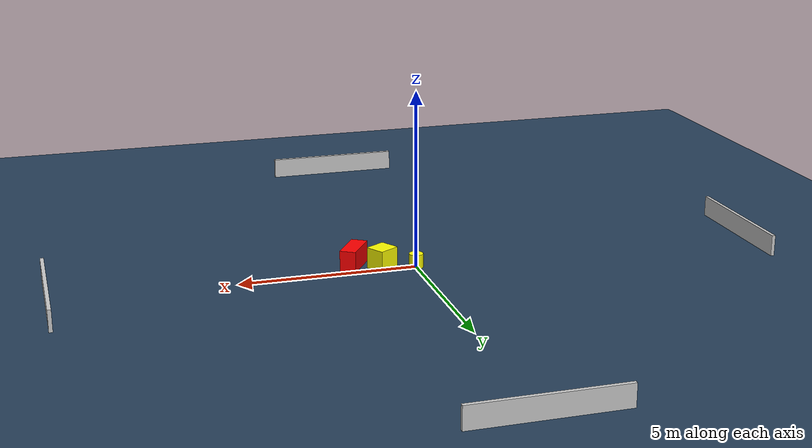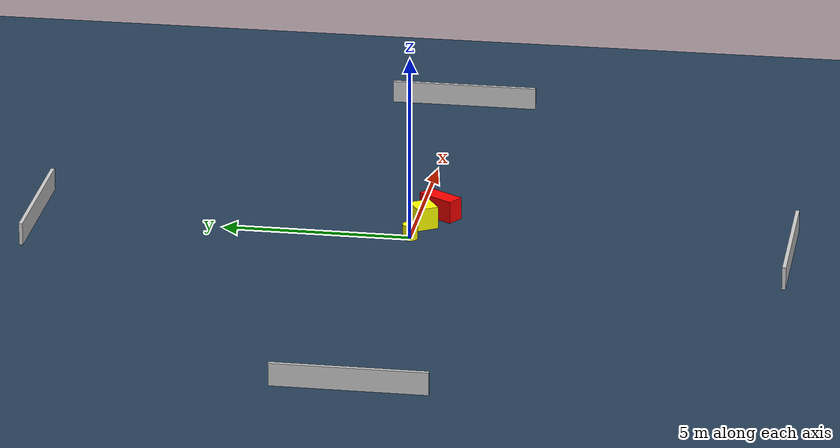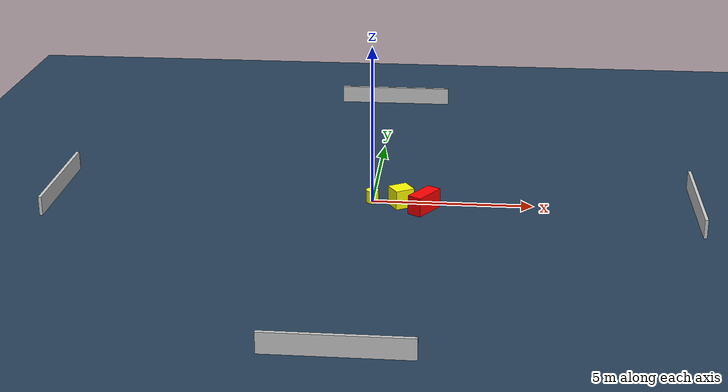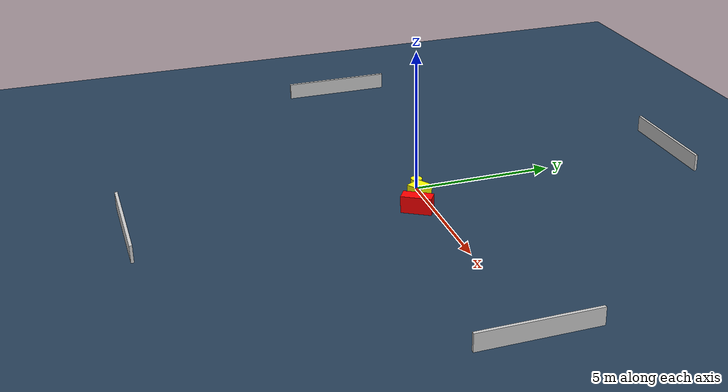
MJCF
<?xml version="1.0" ?>
<mujoco model="generated_environment">
  <option timestep="0.01" integrator="RK4" cone="elliptic"/>
  <default>
    <geom density="1"/>
  </default>
  <asset>
    <texture builtin="gradient" height="3072" name="skybox" rgb1="0.3 0.5 0.7" rgb2="0 0 0" type="skybox" width="512"/>
    <texture builtin="checker" height="300" name="groundplane" rgb1="0.2 0.3 0.4" rgb2="0.1 0.2 0.3" type="2d" width="300"/>
    <material name="groundplane" reflectance="0.2" texrepeat="5 5" texture="groundplane"/>
  </asset>
  <worldbody>
    <light dir="0 0 -1" directional="true" pos="0 0 1.5"/>
    <geom condim="3" friction="0.5 0.005 0.001" material="groundplane" name="floor" pos="0 0 0" size="0 0 0.05" type="plane"/>
    <body name="walls">
      <geom name="wall_1" condim="4" pos="-10.0 0.0 0.3" rgba="0.800000011920929 0.800000011920929 0.800000011920929 1.0" size="0.05 2.0 0.3" type="box"/>
      <geom name="wall_2" condim="4" pos="10.0 0.0 0.3" rgba="0.800000011920929 0.800000011920929 0.800000011920929 1.0" size="0.05 2.0 0.3" type="box"/>
      <geom name="wall_3" condim="4" pos="0.0 -10.0 0.3" rgba="0.800000011920929 0.800000011920929 0.800000011920929 1.0" size="2.0 0.05 0.3" type="box"/>
      <geom name="wall_4" condim="4" pos="0.0 10.0 0.3" rgba="0.800000011920929 0.800000011920929 0.800000011920929 1.0" size="2.0 0.05 0.3" type="box"/>
    </body>
    <body name="robot">
      <joint name="joint_x" type="slide" pos="0 0 0" axis="1 0 0"/>
      <joint name="joint_y" type="slide" pos="0 0 0" axis="0 1 0"/>
      <geom name="robot" type="cylinder" pos="0.0 0.0 0.2" size="0.2 0.2 0.0" mass="5.0" friction="1.0 0.005 0.0001" condim="4" rgba="1.0 1.0 0.0 1.0"/>
    </body>
    <body name="obstacle_1_movable">
      <geom name="obstacle_1_movable" condim="4" pos="0.9162518240374801 -0.2186415732720715 0.3" euler="0 0 121.10123304478581" friction="0.0 0.005 0.001" rgba="1.0 1.0 0.0 1.0" size="0.288417505610622 0.31069046109328535 0.3" type="box" mass="0.1"/>
      <joint type="free"/>
    </body>
    <body name="obstacle_2_static">
      <geom name="obstacle_2_static" condim="4" pos="1.6484040573140968 -0.559718107145926 0.3" euler="0 0 147.59396473820996" friction="0.0 0.005 0.001" rgba="1.0 0.0 0.0 1.0" size="0.2283489043846986 0.5305748732101412 0.3" type="box"/>
    </body>
  </worldbody>
  <actuator>
    <motor name="actuator_x" joint="joint_x" gear="1" ctrlrange="-1 1"/>
    <motor name="actuator_y" joint="joint_y" gear="1" ctrlrange="-1 1"/>
  </actuator>
</mujoco>
